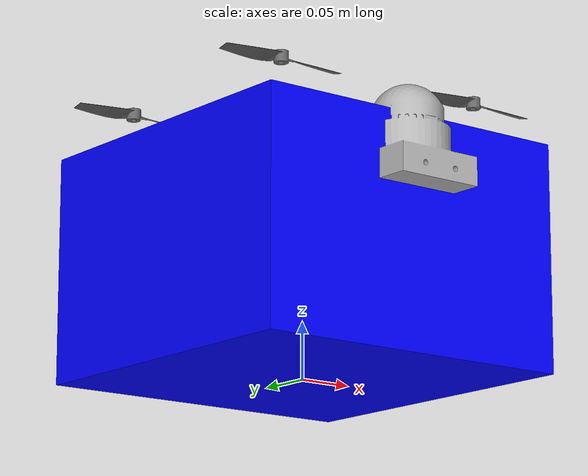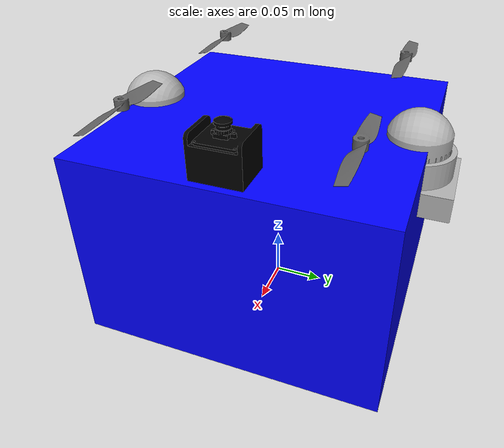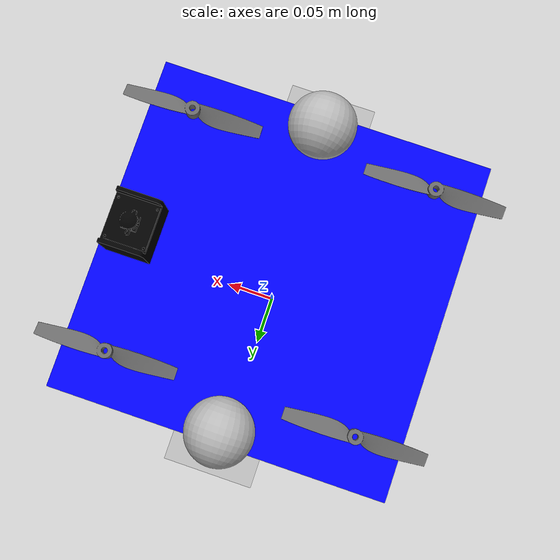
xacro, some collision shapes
<?xml version="1.0"?>
<robot name="drone_1L1C" xmlns:xacro="http://www.ros.org/wiki/xacro">

  <xacro:arg name="simulation_mode" default="false"/>

  <xacro:include filename="$(find drone_description)/urdf/drone_base.xacro"/>
  <xacro:include filename="$(find drone_description)/urdf/airy_lidar.xacro"/>
  <xacro:include filename="$(find drone_description)/urdf/fisheye_camera.xacro"/>
  <xacro:include filename="$(find drone_description)/urdf/propeller.xacro"/>

  <xacro:include filename="$(find drone_description)/urdf/plugins/airy_lidar_gazebo.xacro"/>
  <xacro:include filename="$(find drone_description)/urdf/plugins/fisheye_camera_gazebo.xacro" />

  <!-- First positioning -->

  <!-- Second positioning -->

  <xacro:if value="$(arg simulation_mode)">
    <xacro:robosense_airy_lidar name="lidar_front" parent="base_link" xyz="0.122 0.0 0.20" rpy="0 0.0 0.0"/>
    <xacro:robosense_airy_lidar_gazebo name="lidar_front" topic="/rslidar_front/points" pose="0.0 0.0 0.0 0.0 0.0 0.0"/>
    <xacro:fisheye_camera name="fisheye_camera_front" parent="base_link" xyz="0.122 0.0 0.14" rpy="0.0 0.0 1.5708" />
    <xacro:fisheye_camera_gazebo name="fisheye_camera_front" topic="/front_camera/image_color" info_topic="/camera/camera_info" hfov="3.1415"/>

    <xacro:arg name="world_frame" default="world"/>
    <xacro:arg name="base_link_frame" default="base_link"/>

    <!-- include the exact Hector macro files we inspected -->
    <xacro:include filename="$(find hector_quadrotor_gazebo)/urdf/quadrotor_controller.gazebo.xacro"/>
    <xacro:include filename="$(find hector_quadrotor_gazebo)/urdf/quadrotor_propulsion.gazebo.xacro"/>
    <xacro:include filename="$(find hector_quadrotor_gazebo)/urdf/quadrotor_aerodynamics.gazebo.xacro"/>
    <xacro:include filename="$(find hector_quadrotor_gazebo)/urdf/quadrotor_sensors.gazebo.xacro" />

    <!-- call the macros (these inject the plugins) -->
    <xacro:quadrotor_controller/>
    <xacro:quadrotor_propulsion/>
    <xacro:quadrotor_aerodynamics/>
    <xacro:quadrotor_sensors/>

  </xacro:if>

  <xacro:unless value="$(arg simulation_mode)">
    <xacro:fisheye_camera name="fisheye_camera_front" parent="base_link" xyz="0.122 0.0 0.18" rpy="1.5708 -3.1415 1.5708" />
    <xacro:robosense_airy_lidar name="lidar_left" parent="base_link" xyz="0.0 -0.139 0.14" rpy="0 -1.5708 -1.5708"/>
<xacro:robosense_airy_lidar name="lidar_right"  parent="base_link" xyz="0.0 0.139 0.14" rpy="0 -1.5708 1.5708"/>
  </xacro:unless>

  <!-- props, visual only (NO ros_control joints here) -->
  <xacro:propeller name="front_right_prop" parent="base_link" xyz="0.105  0.105  0.24122" rpy="0 0 0"/>
  <xacro:propeller name="front_left_prop"  parent="base_link" xyz="-0.105  0.105  0.24122" rpy="0 0 0"/>
  <xacro:propeller name="rear_left_prop"   parent="base_link" xyz="-0.105 -0.105  0.24122" rpy="0 0 0"/>
  <xacro:propeller name="rear_right_prop"  parent="base_link" xyz="0.105  -0.105  0.24122" rpy="0 0 0"/>

</robot>

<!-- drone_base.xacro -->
<robot name="drone_base" xmlns:xacro="http://www.ros.org/wiki/xacro">
  <!-- Dummy root link to satisfy KDL (no inertia) -->

  <!-- Base link (drone chassis) -->
  <link name="base_link">
    <visual>
      <origin xyz="0 0 0.1" rpy="0 0 0"/>
      <geometry>
        <mesh filename="package://drone_description/meshes/drone_base_complete.stl" scale="1 1 1"/> <!-- DAE mesh, assuming mm units -->
      </geometry>
      <material name="blue">
        <color rgba="0 0 1 1"/> <!-- Fallback color if DAE lacks textures -->
      </material>
    </visual>
    <collision>
      <origin xyz="0 0 0.1" rpy="0 0 0"/>
      <geometry>
        <box size="0.3 0.3 0.2"/>
      </geometry>
    </collision>
    <inertial>
      <mass value="0.5"/> <!-- Placeholder: 1kg, adjust from CAD -->
      <inertia ixx="0.01" ixy="0.0" ixz="0.0" iyy="0.01" iyz="0.0" izz="0.01"/> <!-- Placeholder, adjust from CAD -->
    </inertial>
  </link>

  <!-- Fixed joint connecting world_link to base_link -->
</robot>

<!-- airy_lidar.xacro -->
<robot name="airy_lidar" xmlns:xacro="http://www.ros.org/wiki/xacro">
  <!-- Macro for dome-like depth camera -->
  <xacro:macro name="robosense_airy_lidar" params="name parent xyz rpy">
    <link name="${name}_link">
      <visual>
        <origin xyz="0 0 0" rpy="0 0 0"/>
        <geometry>
          <mesh filename="package://drone_description/meshes/airy_lidar.dae" scale="1 1 1"/>
        </geometry>
        <material name="silver">
          <color rgba="0.7 0.7 0.7 1"/>
        </material>
      </visual>
      <collision>
        <origin xyz="0 0 0" rpy="0 0 0"/>
        <geometry>
          <mesh filename="package://drone_description/meshes/airy_lidar.dae" scale="1 1 1"/>
        </geometry>
      </collision>
      <inertial>
        <mass value="0.0"/>
        <inertia ixx="0.0001" ixy="0.0" ixz="0.0" iyy="0.0001" iyz="0.0" izz="0.0001"/>
      </inertial>
    </link>

    <joint name="${name}_to_${parent}" type="fixed">
      <parent link="${parent}"/>
      <child link="${name}_link"/>
      <origin xyz="${xyz}" rpy="${rpy}"/>
    </joint>

    <!-- Gazebo Sensor -->

    </xacro:macro>

    <!-- Gazebo Reference -->

  <!-- Instantiate it (you can uncomment to use directly) -->
</robot>

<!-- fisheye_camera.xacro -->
<robot name="fisheye_camera" xmlns:xacro="http://www.ros.org/wiki/xacro">
  <!-- Macro for wide-angle (fisheye) camera -->
  <xacro:macro name="fisheye_camera" params="name parent xyz rpy">
    <link name="${name}_link">
      <visual>
        <origin xyz="0 0 0" rpy="0 0 0"/>
        <geometry>
          <mesh filename="package://drone_description/meshes/fisheye_camera.dae" scale="1 1 1"/>
        </geometry>
        <material name="black">
          <color rgba="0 0 0 1"/>
        </material>
      </visual>
      <collision>
        <origin xyz="0 0 0" rpy="0 0 0"/>
        <geometry>
          <mesh filename="package://drone_description/meshes/fisheye_camera.dae" scale="1 1 1"/>
        </geometry>
      </collision>
      <inertial>
        <mass value="0.0"/>
        <inertia ixx="0.00001" ixy="0.0" ixz="0.0" iyy="0.00001" iyz="0.0" izz="0.00001"/>
      </inertial>
    </link>

    <joint name="${name}_to_${parent}" type="fixed">
      <parent link="${parent}"/>
      <child link="${name}_link"/>
      <origin xyz="${xyz}" rpy="${rpy}"/>
    </joint>

    <link name="${name}_optical_frame"/>
    <joint name="${name}_optical_from_link" type="fixed">
      <parent link="${name}_link"/>
      <child  link="${name}_optical_frame"/>
      <!-- camera_link -> camera_optical (OpenCV) -->
      <origin xyz="0 0 0" rpy="-1.57079632679 0 -1.57079632679"/>
    </joint>

    <!-- Wide-angle (fisheye) Gazebo sensor -->
  </xacro:macro>
</robot>

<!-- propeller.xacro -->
<robot name="propeller" xmlns:xacro="http://www.ros.org/wiki/xacro">

  <xacro:macro name="propeller" params="name parent xyz rpy">
    <link name="${name}_link">
      <visual>
        <origin xyz="0 0 0" rpy="0 0 0"/>
        <geometry>
          <mesh filename="package://drone_description/meshes/propeller.dae" scale="1 1 1"/>
        </geometry>
        <material name="gray">
          <color rgba="0.4 0.4 0.4 1"/>
        </material>
      </visual>

      <collision>
        <origin xyz="0 0 0" rpy="0 0 0"/>
        <geometry>
          <mesh filename="package://drone_description/meshes/propeller.dae" scale="1 1 1"/>
        </geometry>
      </collision>

      <inertial>
        <mass value="0.02"/>
        <inertia ixx="0.000001" ixy="0" ixz="0" iyy="0.000001" iyz="0" izz="0.000001"/>
      </inertial>
    </link>

    <joint name="${name}_joint" type="continuous">
      <parent link="${parent}"/>
      <child link="${name}_link"/>
      <origin xyz="${xyz}" rpy="${rpy}"/>
      <axis xyz="0 0 1"/> <!-- Spinning around Z -->
      <limit effort="1.0" velocity="100.0" />
    </joint>
  </xacro:macro>

</robot>
